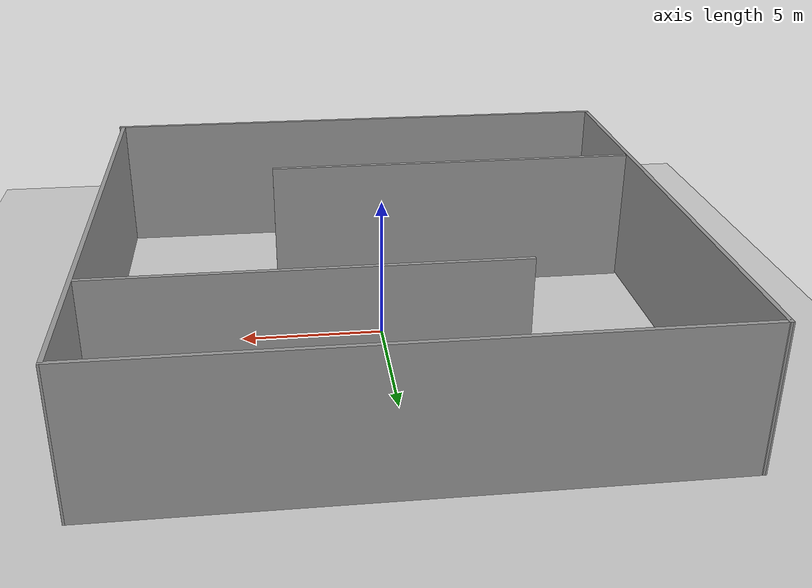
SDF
<sdf version="1.7">
 <world name="default">
  <light name="sun" type="directional">
   <pose>0 0 10 0 -0 0</pose>
   <diffuse>0.8 0.8 0.8 1</diffuse>
   <specular>0.2 0.2 0.2 1</specular>
   <attenuation>
    <range>1000</range>
    <constant>0.9</constant>
    <linear>0.01</linear>
    <quadratic>0.001</quadratic>
   </attenuation>
   <direction>-0.5 0.1 -0.9</direction>
   <spot><inner_angle>0</inner_angle><outer_angle>0</outer_angle><falloff>0</falloff></spot>
  </light>
  <model name="ground_plane">
   <static>1</static>
   <link name="link">
    <collision name="collision">
     <geometry><plane><normal>0 0 1</normal><size>100 100</size></plane></geometry>
     <surface>
      <contact><collide_bitmask>65535</collide_bitmask></contact>
      <friction><ode><mu>100</mu><mu2>50</mu2></ode></friction>
     </surface>
    </collision>
    <visual name="visual">
     <cast_shadows>0</cast_shadows>
     <geometry><plane><normal>0 0 1</normal><size>100 100</size></plane></geometry>
     <material>
      <script><uri>file://media/materials/scripts/gazebo.material</uri><name>Gazebo/Grey</name></script>
     </material>
    </visual>
   </link>
  </model>
  <gravity>0 0 -9.8</gravity>
  <magnetic_field>6e-06 2.3e-05 -4.2e-05</magnetic_field>
  <atmosphere type="adiabatic"/>
  <physics type="ode">
   <max_step_size>0.001</max_step_size>
   <real_time_factor>1</real_time_factor>
   <real_time_update_rate>1000</real_time_update_rate>
  </physics>
  <scene><ambient>0.4 0.4 0.4 1</ambient><background>0.7 0.7 0.7 1</background><shadows>1</shadows></scene>
  <spherical_coordinates>
   <surface_model>EARTH_WGS84</surface_model>
   <latitude_deg>0</latitude_deg>
   <longitude_deg>0</longitude_deg>
   <elevation>0</elevation>
   <heading_deg>0</heading_deg>
  </spherical_coordinates>
  <model name="simple_arena">
   <pose>-0.117124 0.043399 0 0 -0 0</pose>
   <link name="Wall_1">
    <collision name="Wall_1_Collision">
     <geometry><box><size>19.8934 0.15 5</size></box></geometry>
     <pose>0 0 2.5 0 -0 0</pose>
    </collision>
    <visual name="Wall_1_Visual">
     <pose>0 0 2.5 0 -0 0</pose>
     <geometry><box><size>19.8934 0.15 5</size></box></geometry>
     <material>
      <script><uri>file://media/materials/scripts/gazebo.material</uri><name>Gazebo/Grey</name></script>
      <ambient>1 1 1 1</ambient>
     </material>
     <meta><layer>0</layer></meta>
    </visual>
    <pose>-0 -9.675 0 0 -0 -0.000966</pose>
   </link>
   <link name="Wall_14">
    <collision name="Wall_14_Collision">
     <geometry><box><size>13.5 0.15 5</size></box></geometry>
     <pose>0 0 2.5 0 -0 0</pose>
    </collision>
    <visual name="Wall_14_Visual">
     <pose>0 0 2.5 0 -0 0</pose>
     <geometry><box><size>13.5 0.15 5</size></box></geometry>
     <material>
      <script><uri>file://media/materials/scripts/gazebo.material</uri><name>Gazebo/Grey</name></script>
      <ambient>1 1 1 1</ambient>
     </material>
     <meta><layer>0</layer></meta>
    </visual>
    <pose>-2.99588 -3.9154 0 0 -0 0</pose>
   </link>
   <link name="Wall_16">
    <collision name="Wall_16_Collision">
     <geometry><box><size>13.75 0.15 5</size></box></geometry>
     <pose>0 0 2.5 0 -0 0</pose>
    </collision>
    <visual name="Wall_16_Visual">
     <pose>0 0 2.5 0 -0 0</pose>
     <geometry><box><size>13.75 0.15 5</size></box></geometry>
     <material>
      <script><uri>file://media/materials/scripts/gazebo.material</uri><name>Gazebo/Grey</name></script>
      <ambient>1 1 1 1</ambient>
     </material>
     <meta><layer>0</layer></meta>
    </visual>
    <pose>2.84012 4.9276 0 0 -0 0</pose>
   </link>
   <link name="Wall_2">
    <collision name="Wall_2_Collision">
     <geometry><box><size>19.5 0.15 5</size></box></geometry>
     <pose>0 0 2.5 0 -0 0</pose>
    </collision>
    <visual name="Wall_2_Visual">
     <pose>0 0 2.5 0 -0 0</pose>
     <geometry><box><size>19.5 0.15 5</size></box></geometry>
     <material>
      <script><uri>file://media/materials/scripts/gazebo.material</uri><name>Gazebo/Grey</name></script>
      <ambient>1 1 1 1</ambient>
     </material>
     <meta><layer>0</layer></meta>
    </visual>
    <pose>9.7833 -0.009533 0 0 -0 1.5708</pose>
   </link>
   <link name="Wall_6">
    <collision name="Wall_6_Collision">
     <geometry><box><size>19.5 0.15 5</size></box></geometry>
     <pose>0 0 2.5 0 -0 0</pose>
    </collision>
    <visual name="Wall_6_Visual">
     <pose>0 0 2.5 0 -0 0</pose>
     <geometry><box><size>19.5 0.15 5</size></box></geometry>
     <material>
      <script><uri>file://media/materials/scripts/gazebo.material</uri><name>Gazebo/Grey</name></script>
      <ambient>1 1 1 1</ambient>
     </material>
     <meta><layer>0</layer></meta>
    </visual>
    <pose>-9.87168 0.009532 0 0 -0 -1.5708</pose>
   </link>
   <link name="Wall_8">
    <collision name="Wall_8_Collision">
     <geometry><box><size>19.7545 0.15 5</size></box></geometry>
     <pose>0 0 2.5 0 -0 0</pose>
    </collision>
    <visual name="Wall_8_Visual">
     <pose>0 0 2.5 0 -0 0</pose>
     <geometry><box><size>19.7545 0.15 5</size></box></geometry>
     <material>
      <script><uri>file://media/materials/scripts/gazebo.material</uri><name>Gazebo/Grey</name></script>
      <ambient>1 1 1 1</ambient>
     </material>
     <meta><layer>0</layer></meta>
    </visual>
    <pose>-0.018926 9.675 0 0 -0 -0.000972</pose>
   </link>
   <static>1</static>
  </model>
 </world>
</sdf>
